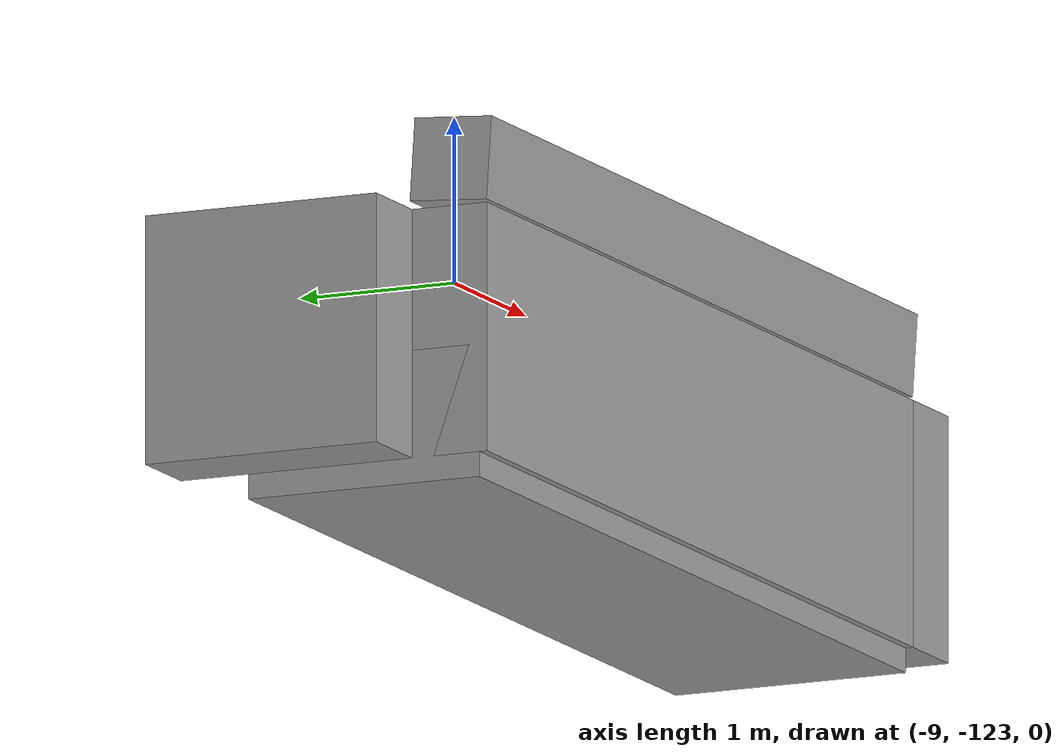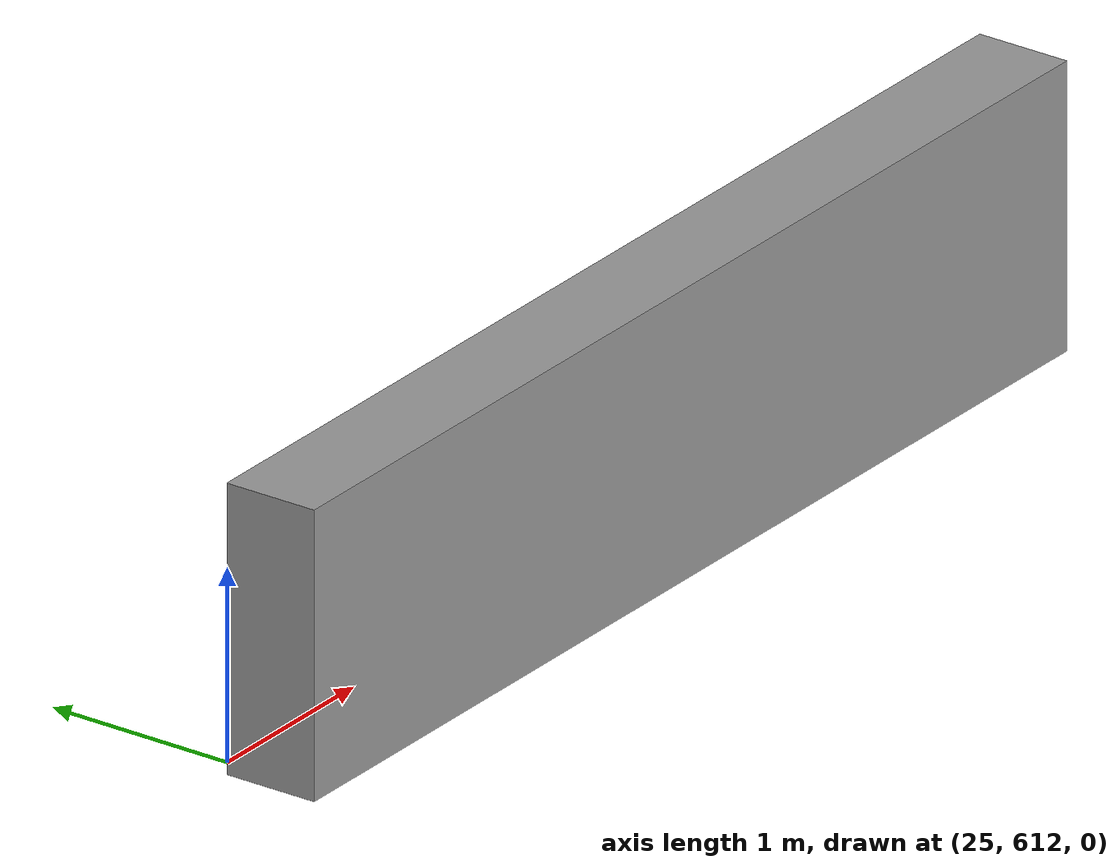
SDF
<?xml version='1.0'?>
<sdf version='1.6'>
  <model name='couch'>
    <link name='link_8'>
      <pose frame=''>-2.42722 -122.311 -0.198305 0 -0 0</pose>
      <inertial>
        <mass>1</mass>
        <inertia>
          <ixx>0.166667</ixx>
          <ixy>0</ixy>
          <ixz>0</ixz>
          <iyy>0.166667</iyy>
          <iyz>0</iyz>
          <izz>0.166667</izz>
        </inertia>
        <pose frame=''>0 0 0 0 -0 0</pose>
      </inertial>
      <self_collide>0</self_collide>
      <kinematic>0</kinematic>
      <visual name='visual'>
        <pose frame=''>0 0 0 0 -0 0</pose>
        <geometry>
          <box>
            <size>0.5 1.5 1.5</size>
          </box>
        </geometry>
        <material>
          <lighting>1</lighting>
          <script>
            <uri>file://media/materials/scripts/gazebo.material</uri>
            <name>Gazebo/Grey</name>
          </script>
          <shader type='pixel'>
            <normal_map>__default__</normal_map>
          </shader>
          <ambient>0.3 0.3 0.3 1</ambient>
          <diffuse>0.7 0.7 0.7 1</diffuse>
          <specular>0.01 0.01 0.01 1</specular>
          <emissive>0 0 0 1</emissive>
        </material>
        <transparency>0</transparency>
        <cast_shadows>1</cast_shadows>
      </visual>
      <collision name='collision'>
        <laser_retro>0</laser_retro>
        <max_contacts>10</max_contacts>
        <pose frame=''>0 0 0 0 -0 0</pose>
        <geometry>
          <box>
            <size>0.5 1.5 1.5</size>
          </box>
        </geometry>
        <surface>
          <friction>
            <ode>
              <mu>1</mu>
              <mu2>1</mu2>
              <fdir1>0 0 0</fdir1>
              <slip1>0</slip1>
              <slip2>0</slip2>
            </ode>
            <torsional>
              <coefficient>1</coefficient>
              <patch_radius>0</patch_radius>
              <surface_radius>0</surface_radius>
              <use_patch_radius>1</use_patch_radius>
              <ode>
                <slip>0</slip>
              </ode>
            </torsional>
          </friction>
          <bounce>
            <restitution_coefficient>0</restitution_coefficient>
            <threshold>1e+06</threshold>
          </bounce>
          <contact>
            <collide_without_contact>0</collide_without_contact>
            <collide_without_contact_bitmask>1</collide_without_contact_bitmask>
            <collide_bitmask>1</collide_bitmask>
            <ode>
              <soft_cfm>0</soft_cfm>
              <soft_erp>0.2</soft_erp>
              <kp>1e+13</kp>
              <kd>1</kd>
              <max_vel>0.01</max_vel>
              <min_depth>0</min_depth>
            </ode>
            <bullet>
              <split_impulse>1</split_impulse>
              <split_impulse_penetration_threshold>-0.01</split_impulse_penetration_threshold>
              <soft_cfm>0</soft_cfm>
              <soft_erp>0.2</soft_erp>
              <kp>1e+13</kp>
              <kd>1</kd>
            </bullet>
          </contact>
        </surface>
      </collision>
    </link>
    <link name='link_10'>
      <pose frame=''>-5.67722 -122.261 -0.698305 0 -0 0</pose>
      <inertial>
        <mass>1</mass>
        <inertia>
          <ixx>0.166667</ixx>
          <ixy>0</ixy>
          <ixz>0</ixz>
          <iyy>0.166667</iyy>
          <iyz>0</iyz>
          <izz>0.166667</izz>
        </inertia>
        <pose frame=''>0 0 0 0 -0 0</pose>
      </inertial>
      <self_collide>0</self_collide>
      <kinematic>0</kinematic>
      <visual name='visual'>
        <pose frame=''>0 0 0 0 -0 0</pose>
        <geometry>
          <box>
            <size>6 1.5 0.8</size>
          </box>
        </geometry>
        <material>
          <lighting>1</lighting>
          <script>
            <uri>file://media/materials/scripts/gazebo.material</uri>
            <name>Gazebo/Grey</name>
          </script>
          <shader type='pixel'>
            <normal_map>__default__</normal_map>
          </shader>
          <ambient>0.3 0.3 0.3 1</ambient>
          <diffuse>0.7 0.7 0.7 1</diffuse>
          <specular>0.01 0.01 0.01 1</specular>
          <emissive>0 0 0 1</emissive>
        </material>
        <transparency>0</transparency>
        <cast_shadows>1</cast_shadows>
      </visual>
      <collision name='collision'>
        <laser_retro>0</laser_retro>
        <max_contacts>10</max_contacts>
        <pose frame=''>0 0 0 0 -0 0</pose>
        <geometry>
          <box>
            <size>6 1.6 0.8</size>
          </box>
        </geometry>
        <surface>
          <friction>
            <ode>
              <mu>1</mu>
              <mu2>1</mu2>
              <fdir1>0 0 0</fdir1>
              <slip1>0</slip1>
              <slip2>0</slip2>
            </ode>
            <torsional>
              <coefficient>1</coefficient>
              <patch_radius>0</patch_radius>
              <surface_radius>0</surface_radius>
              <use_patch_radius>1</use_patch_radius>
              <ode>
                <slip>0</slip>
              </ode>
            </torsional>
          </friction>
          <bounce>
            <restitution_coefficient>0</restitution_coefficient>
            <threshold>1e+06</threshold>
          </bounce>
          <contact>
            <collide_without_contact>0</collide_without_contact>
            <collide_without_contact_bitmask>1</collide_without_contact_bitmask>
            <collide_bitmask>1</collide_bitmask>
            <ode>
              <soft_cfm>0</soft_cfm>
              <soft_erp>0.2</soft_erp>
              <kp>1e+13</kp>
              <kd>1</kd>
              <max_vel>0.01</max_vel>
              <min_depth>0</min_depth>
            </ode>
            <bullet>
              <split_impulse>1</split_impulse>
              <split_impulse_penetration_threshold>-0.01</split_impulse_penetration_threshold>
              <soft_cfm>0</soft_cfm>
              <soft_erp>0.2</soft_erp>
              <kp>1e+13</kp>
              <kd>1</kd>
            </bullet>
          </contact>
        </surface>
      </collision>
    </link>
    <link name='link_8_clone'>
      <pose frame=''>-8.92722 -121.824 -0.198305 0 -0 0</pose>
      <inertial>
        <mass>1</mass>
        <inertia>
          <ixx>0.166667</ixx>
          <ixy>0</ixy>
          <ixz>0</ixz>
          <iyy>0.166667</iyy>
          <iyz>0</iyz>
          <izz>0.166667</izz>
        </inertia>
        <pose frame=''>0 0 0 0 -0 0</pose>
      </inertial>
      <self_collide>0</self_collide>
      <kinematic>0</kinematic>
      <visual name='visual'>
        <pose frame=''>0 0 0 0 -0 0</pose>
        <geometry>
          <box>
            <size>0.5 1.5 1.5</size>
          </box>
        </geometry>
        <material>
          <lighting>1</lighting>
          <script>
            <uri>file://media/materials/scripts/gazebo.material</uri>
            <name>Gazebo/Grey</name>
          </script>
          <shader type='pixel'>
            <normal_map>__default__</normal_map>
          </shader>
          <ambient>0.3 0.3 0.3 1</ambient>
          <diffuse>0.7 0.7 0.7 1</diffuse>
          <specular>0.01 0.01 0.01 1</specular>
          <emissive>0 0 0 1</emissive>
        </material>
        <transparency>0</transparency>
        <cast_shadows>1</cast_shadows>
      </visual>
      <collision name='collision'>
        <laser_retro>0</laser_retro>
        <max_contacts>10</max_contacts>
        <pose frame=''>0 0 0 0 -0 0</pose>
        <geometry>
          <box>
            <size>0.5 1.5 1.5</size>
          </box>
        </geometry>
        <surface>
          <friction>
            <ode>
              <mu>1</mu>
              <mu2>1</mu2>
              <fdir1>0 0 0</fdir1>
              <slip1>0</slip1>
              <slip2>0</slip2>
            </ode>
            <torsional>
              <coefficient>1</coefficient>
              <patch_radius>0</patch_radius>
              <surface_radius>0</surface_radius>
              <use_patch_radius>1</use_patch_radius>
              <ode>
                <slip>0</slip>
              </ode>
            </torsional>
          </friction>
          <bounce>
            <restitution_coefficient>0</restitution_coefficient>
            <threshold>1e+06</threshold>
          </bounce>
          <contact>
            <collide_without_contact>0</collide_without_contact>
            <collide_without_contact_bitmask>1</collide_without_contact_bitmask>
            <collide_bitmask>1</collide_bitmask>
            <ode>
              <soft_cfm>0</soft_cfm>
              <soft_erp>0.2</soft_erp>
              <kp>1e+13</kp>
              <kd>1</kd>
              <max_vel>0.01</max_vel>
              <min_depth>0</min_depth>
            </ode>
            <bullet>
              <split_impulse>1</split_impulse>
              <split_impulse_penetration_threshold>-0.01</split_impulse_penetration_threshold>
              <soft_cfm>0</soft_cfm>
              <soft_erp>0.2</soft_erp>
              <kp>1e+13</kp>
              <kd>1</kd>
            </bullet>
          </contact>
        </surface>
      </collision>
    </link>
    <link name='link_9'>
      <pose frame=''>-5.67722 -122.825 0.83642 0.064752 -0 0</pose>
      <inertial>
        <mass>0.997401</mass>
        <inertia>
          <ixx>0.0414515</ixx>
          <ixy>0</ixy>
          <ixz>0</ixz>
          <iyy>3.01298</iyy>
          <iyz>0</iyz>
          <izz>3.01287</izz>
        </inertia>
        <pose frame=''>0 0 0 0 -0 0</pose>
      </inertial>
      <self_collide>0</self_collide>
      <kinematic>0</kinematic>
      <visual name='visual'>
        <pose frame=''>0 0 0 0 -0 0</pose>
        <geometry>
          <box>
            <size>6 0.498712 0.5</size>
          </box>
        </geometry>
        <material>
          <lighting>1</lighting>
          <script>
            <uri>file://media/materials/scripts/gazebo.material</uri>
            <name>Gazebo/Grey</name>
          </script>
          <shader type='pixel'>
            <normal_map>__default__</normal_map>
          </shader>
          <ambient>0.3 0.3 0.3 1</ambient>
          <diffuse>0.7 0.7 0.7 1</diffuse>
          <specular>0.01 0.01 0.01 1</specular>
          <emissive>0 0 0 1</emissive>
        </material>
        <transparency>0</transparency>
        <cast_shadows>1</cast_shadows>
      </visual>
      <collision name='collision'>
        <laser_retro>0</laser_retro>
        <max_contacts>10</max_contacts>
        <pose frame=''>0 0 0 0 -0 0</pose>
        <geometry>
          <box>
            <size>6 0.498712 0.5</size>
          </box>
        </geometry>
        <surface>
          <friction>
            <ode>
              <mu>1</mu>
              <mu2>1</mu2>
              <fdir1>0 0 0</fdir1>
              <slip1>0</slip1>
              <slip2>0</slip2>
            </ode>
            <torsional>
              <coefficient>1</coefficient>
              <patch_radius>0</patch_radius>
              <surface_radius>0</surface_radius>
              <use_patch_radius>1</use_patch_radius>
              <ode>
                <slip>0</slip>
              </ode>
            </torsional>
          </friction>
          <bounce>
            <restitution_coefficient>0</restitution_coefficient>
            <threshold>1e+06</threshold>
          </bounce>
          <contact>
            <collide_without_contact>0</collide_without_contact>
            <collide_without_contact_bitmask>1</collide_without_contact_bitmask>
            <collide_bitmask>1</collide_bitmask>
            <ode>
              <soft_cfm>0</soft_cfm>
              <soft_erp>0.2</soft_erp>
              <kp>1e+13</kp>
              <kd>1</kd>
              <max_vel>0.01</max_vel>
              <min_depth>0</min_depth>
            </ode>
            <bullet>
              <split_impulse>1</split_impulse>
              <split_impulse_penetration_threshold>-0.01</split_impulse_penetration_threshold>
              <soft_cfm>0</soft_cfm>
              <soft_erp>0.2</soft_erp>
              <kp>1e+13</kp>
              <kd>1</kd>
            </bullet>
          </contact>
        </surface>
      </collision>
    </link>
    <link name='link_9_clone'>
      <pose frame=''>28.3861 612.034 0.45681 0 -0 0</pose>
      <inertial>
        <mass>1</mass>
        <inertia>
          <ixx>0.166667</ixx>
          <ixy>0</ixy>
          <ixz>0</ixz>
          <iyy>0.166667</iyy>
          <iyz>0</iyz>
          <izz>0.166667</izz>
        </inertia>
        <pose frame=''>0 0 0 0 -0 0</pose>
      </inertial>
      <self_collide>0</self_collide>
      <kinematic>0</kinematic>
      <visual name='visual'>
        <pose frame=''>0 0 0 0 -0 0</pose>
        <geometry>
          <box>
            <size>6 0.5 1.5</size>
          </box>
        </geometry>
        <material>
          <lighting>1</lighting>
          <script>
            <uri>file://media/materials/scripts/gazebo.material</uri>
            <name>Gazebo/Grey</name>
          </script>
          <shader type='pixel'>
            <normal_map>__default__</normal_map>
          </shader>
          <ambient>0.3 0.3 0.3 1</ambient>
          <diffuse>0.7 0.7 0.7 1</diffuse>
          <specular>0.01 0.01 0.01 1</specular>
          <emissive>0 0 0 1</emissive>
        </material>
        <transparency>0</transparency>
        <cast_shadows>1</cast_shadows>
      </visual>
      <collision name='collision'>
        <laser_retro>0</laser_retro>
        <max_contacts>10</max_contacts>
        <pose frame=''>0 0 0 0 -0 0</pose>
        <geometry>
          <box>
            <size>6 0.5 1.5</size>
          </box>
        </geometry>
        <surface>
          <friction>
            <ode>
              <mu>1</mu>
              <mu2>1</mu2>
              <fdir1>0 0 0</fdir1>
              <slip1>0</slip1>
              <slip2>0</slip2>
            </ode>
            <torsional>
              <coefficient>1</coefficient>
              <patch_radius>0</patch_radius>
              <surface_radius>0</surface_radius>
              <use_patch_radius>1</use_patch_radius>
              <ode>
                <slip>0</slip>
              </ode>
            </torsional>
          </friction>
          <bounce>
            <restitution_coefficient>0</restitution_coefficient>
            <threshold>1e+06</threshold>
          </bounce>
          <contact>
            <collide_without_contact>0</collide_without_contact>
            <collide_without_contact_bitmask>1</collide_without_contact_bitmask>
            <collide_bitmask>1</collide_bitmask>
            <ode>
              <soft_cfm>0</soft_cfm>
              <soft_erp>0.2</soft_erp>
              <kp>1e+13</kp>
              <kd>1</kd>
              <max_vel>0.01</max_vel>
              <min_depth>0</min_depth>
            </ode>
            <bullet>
              <split_impulse>1</split_impulse>
              <split_impulse_penetration_threshold>-0.01</split_impulse_penetration_threshold>
              <soft_cfm>0</soft_cfm>
              <soft_erp>0.2</soft_erp>
              <kp>1e+13</kp>
              <kd>1</kd>
            </bullet>
          </contact>
        </surface>
      </collision>
    </link>
    <link name='link_9_clone_0'>
      <pose frame=''>-5.67722 -122.811 -0.198305 0 -0 0</pose>
      <inertial>
        <mass>1</mass>
        <inertia>
          <ixx>0.166667</ixx>
          <ixy>0</ixy>
          <ixz>0</ixz>
          <iyy>0.166667</iyy>
          <iyz>0</iyz>
          <izz>0.166667</izz>
        </inertia>
        <pose frame=''>0 0 0 0 -0 0</pose>
      </inertial>
      <self_collide>0</self_collide>
      <kinematic>0</kinematic>
      <visual name='visual'>
        <pose frame=''>0 0 0 0 -0 0</pose>
        <geometry>
          <box>
            <size>6 0.5 1.5</size>
          </box>
        </geometry>
        <material>
          <lighting>1</lighting>
          <script>
            <uri>file://media/materials/scripts/gazebo.material</uri>
            <name>Gazebo/Grey</name>
          </script>
          <shader type='pixel'>
            <normal_map>__default__</normal_map>
          </shader>
          <ambient>0.3 0.3 0.3 1</ambient>
          <diffuse>0.7 0.7 0.7 1</diffuse>
          <specular>0.01 0.01 0.01 1</specular>
          <emissive>0 0 0 1</emissive>
        </material>
        <transparency>0</transparency>
        <cast_shadows>1</cast_shadows>
      </visual>
      <collision name='collision'>
        <laser_retro>0</laser_retro>
        <max_contacts>10</max_contacts>
        <pose frame=''>0 0 0 0 -0 0</pose>
        <geometry>
          <box>
            <size>6 0.5 1.5</size>
          </box>
        </geometry>
        <surface>
          <friction>
            <ode>
              <mu>1</mu>
              <mu2>1</mu2>
              <fdir1>0 0 0</fdir1>
              <slip1>0</slip1>
              <slip2>0</slip2>
            </ode>
            <torsional>
              <coefficient>1</coefficient>
              <patch_radius>0</patch_radius>
              <surface_radius>0</surface_radius>
              <use_patch_radius>1</use_patch_radius>
              <ode>
                <slip>0</slip>
              </ode>
            </torsional>
          </friction>
          <bounce>
            <restitution_coefficient>0</restitution_coefficient>
            <threshold>1e+06</threshold>
          </bounce>
          <contact>
            <collide_without_contact>0</collide_without_contact>
            <collide_without_contact_bitmask>1</collide_without_contact_bitmask>
            <collide_bitmask>1</collide_bitmask>
            <ode>
              <soft_cfm>0</soft_cfm>
              <soft_erp>0.2</soft_erp>
              <kp>1e+13</kp>
              <kd>1</kd>
              <max_vel>0.01</max_vel>
              <min_depth>0</min_depth>
            </ode>
            <bullet>
              <split_impulse>1</split_impulse>
              <split_impulse_penetration_threshold>-0.01</split_impulse_penetration_threshold>
              <soft_cfm>0</soft_cfm>
              <soft_erp>0.2</soft_erp>
              <kp>1e+13</kp>
              <kd>1</kd>
            </bullet>
          </contact>
        </surface>
      </collision>
    </link>
    <joint name='link_9_clone_0_JOINT_10' type='fixed'>
      <parent>link_9_clone_0</parent>
      <child>link_8</child>
      <pose frame=''>0 0 0 0 -0 0</pose>
      <physics>
        <ode>
          <limit>
            <cfm>0</cfm>
            <erp>0.2</erp>
          </limit>
          <suspension>
            <cfm>0</cfm>
            <erp>0.2</erp>
          </suspension>
        </ode>
      </physics>
    </joint>
    <joint name='link_9_clone_0_JOINT_6' type='fixed'>
      <parent>link_9_clone_0</parent>
      <child>link_9</child>
      <pose frame=''>0 0 0 0 -0 0</pose>
      <physics>
        <ode>
          <limit>
            <cfm>0</cfm>
            <erp>0.2</erp>
          </limit>
          <suspension>
            <cfm>0</cfm>
            <erp>0.2</erp>
          </suspension>
        </ode>
      </physics>
    </joint>
    <joint name='link_9_clone_0_JOINT_8' type='fixed'>
      <parent>link_9_clone_0</parent>
      <child>link_8_clone</child>
      <pose frame=''>0 0 0 0 -0 0</pose>
      <physics>
        <ode>
          <limit>
            <cfm>0</cfm>
            <erp>0.2</erp>
          </limit>
          <suspension>
            <cfm>0</cfm>
            <erp>0.2</erp>
          </suspension>
        </ode>
      </physics>
    </joint>
    <joint name='link_9_clone_0_JOINT_9' type='revolute'>
      <parent>link_9_clone_0</parent>
      <child>link_10</child>
      <pose frame=''>0 0 0 0 -0 0</pose>
      <axis>
        <xyz>1 0 0</xyz>
        <use_parent_model_frame>0</use_parent_model_frame>
        <limit>
          <lower>-1.79769e+308</lower>
          <upper>1.79769e+308</upper>
          <effort>-1</effort>
          <velocity>-1</velocity>
        </limit>
        <dynamics>
          <spring_reference>0</spring_reference>
          <spring_stiffness>0</spring_stiffness>
          <damping>0</damping>
          <friction>0</friction>
        </dynamics>
      </axis>
      <physics>
        <ode>
          <limit>
            <cfm>0</cfm>
            <erp>0.2</erp>
          </limit>
          <suspension>
            <cfm>0</cfm>
            <erp>0.2</erp>
          </suspension>
        </ode>
      </physics>
    </joint>
    <static>0</static>
    <allow_auto_disable>1</allow_auto_disable>
  </model>
</sdf>
